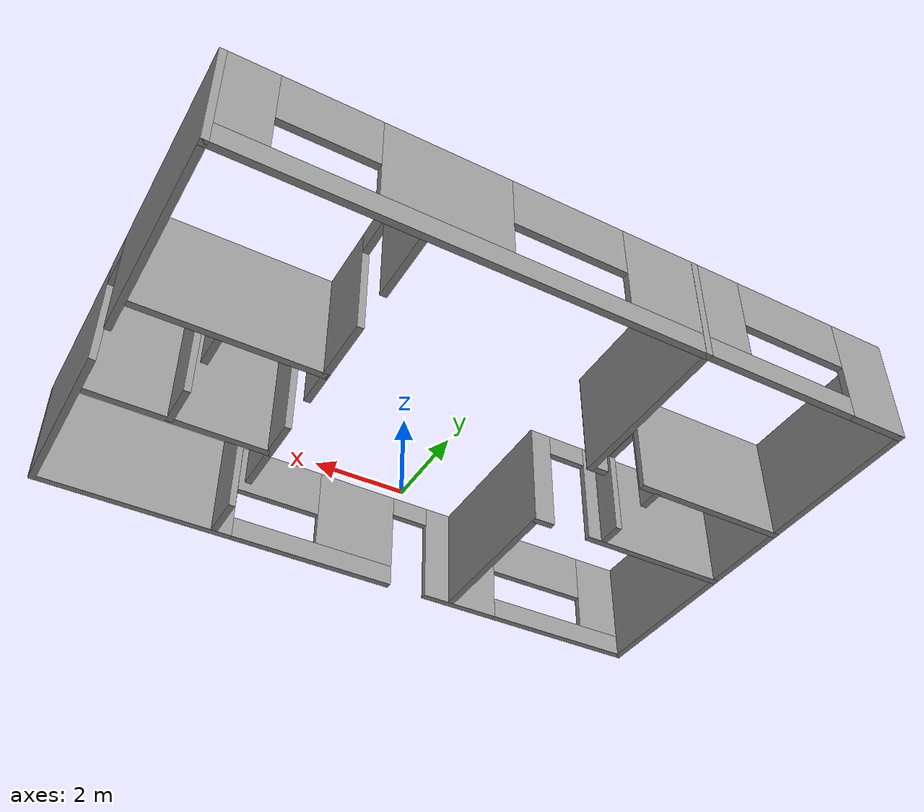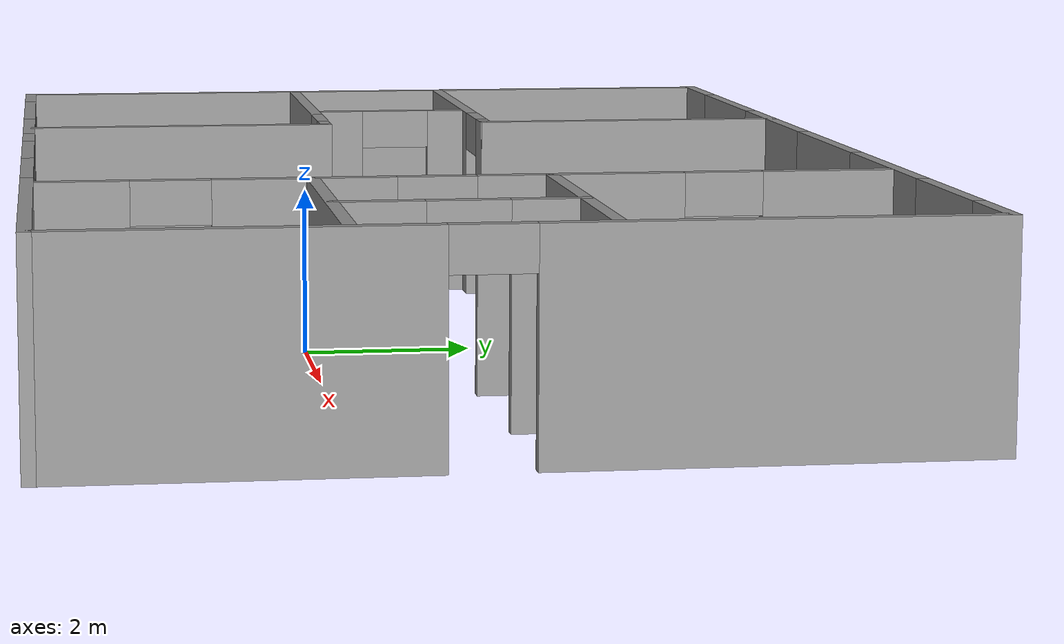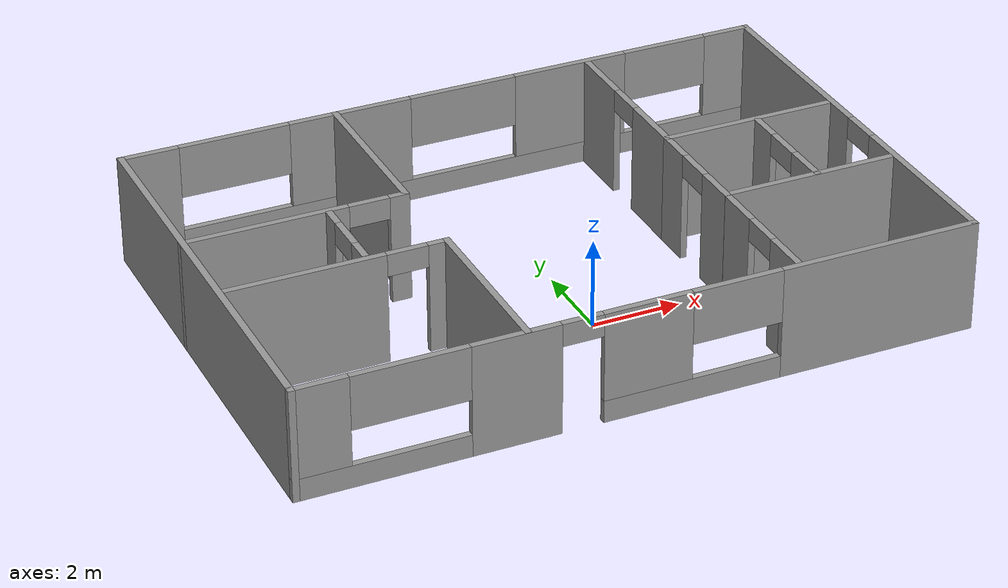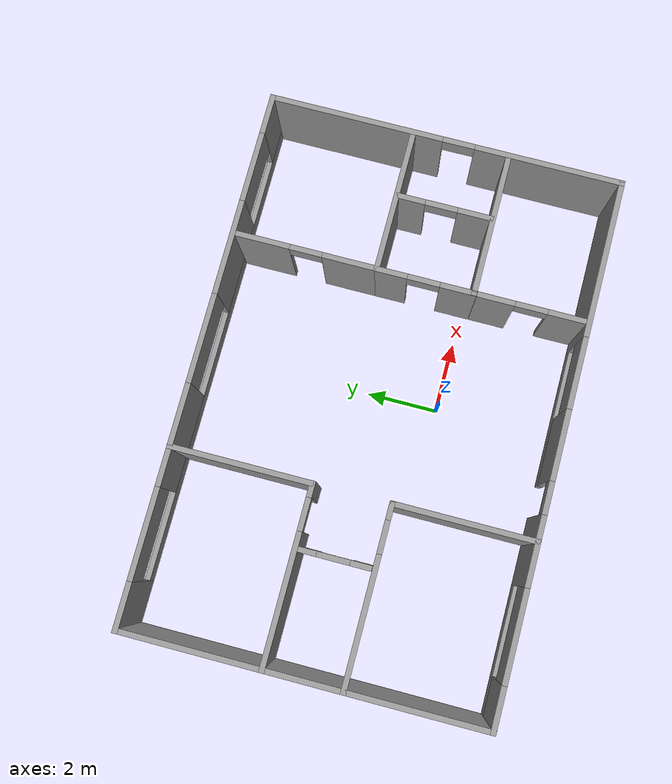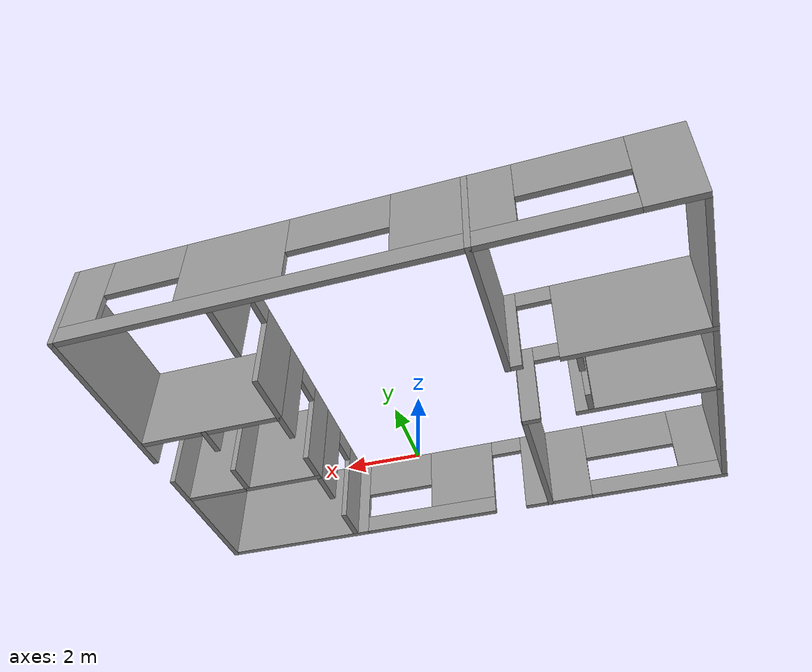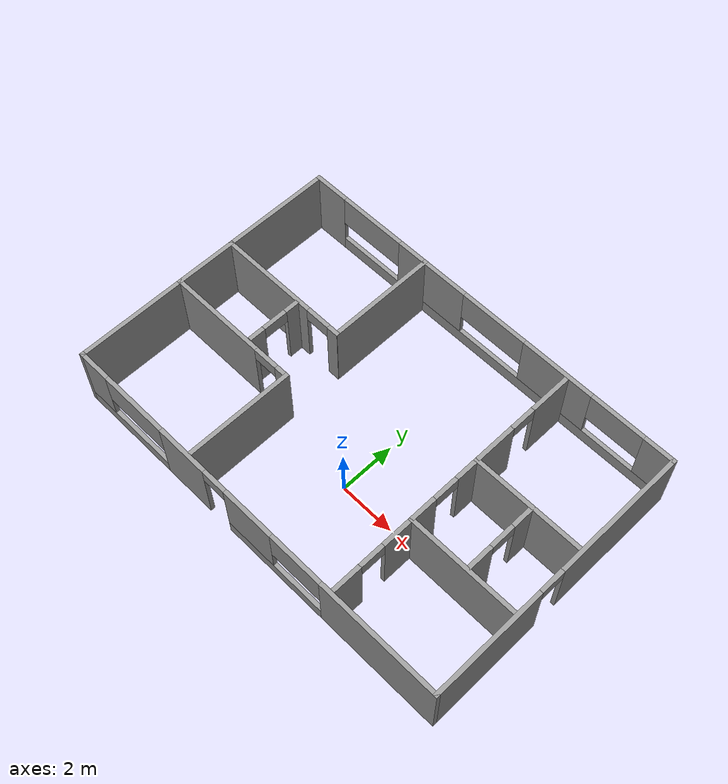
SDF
<?xml version='1.0'?>
<sdf version='1.7'>
  <model name='my_house'>
    <pose>-0.457596 1.60733 0 0 -0 0</pose>
    <link name='Wall_25'>
      <pose>0.000595 4.9235 0 0 -0 0</pose>
      <visual name='Wall_25_Visual_0'>
        <pose>-6.83087 0 1.25 0 -0 0</pose>
        <geometry>
          <box>
            <size>1.33827 0.15 2.5</size>
          </box>
        </geometry>
        <material>
          <script>
            <uri>file://media/materials/scripts/gazebo.material</uri>
            <name>Gazebo/Grey</name>
          </script>
          <ambient>1 1 1 1</ambient>
        </material>
        <meta>
          <layer>0</layer>
        </meta>
      </visual>
      <collision name='Wall_25_Collision_0'>
        <geometry>
          <box>
            <size>1.33827 0.15 2.5</size>
          </box>
        </geometry>
        <pose>-6.83087 0 1.25 0 -0 0</pose>
      </collision>
      <visual name='Wall_25_Visual_1'>
        <pose>0.669135 0 0.25 0 -0 0</pose>
        <geometry>
          <box>
            <size>13.6617 0.15 0.5</size>
          </box>
        </geometry>
        <material>
          <script>
            <uri>file://media/materials/scripts/gazebo.material</uri>
            <name>Gazebo/Grey</name>
          </script>
          <ambient>1 1 1 1</ambient>
        </material>
        <meta>
          <layer>0</layer>
        </meta>
      </visual>
      <collision name='Wall_25_Collision_1'>
        <geometry>
          <box>
            <size>13.6617 0.15 0.5</size>
          </box>
        </geometry>
        <pose>0.669135 0 0.25 0 -0 0</pose>
      </collision>
      <visual name='Wall_25_Visual_2'>
        <pose>-2.25173 0 1.5 0 -0 0</pose>
        <geometry>
          <box>
            <size>2.82 0.15 2</size>
          </box>
        </geometry>
        <material>
          <script>
            <uri>file://media/materials/scripts/gazebo.material</uri>
            <name>Gazebo/Grey</name>
          </script>
          <ambient>1 1 1 1</ambient>
        </material>
        <meta>
          <layer>0</layer>
        </meta>
      </visual>
      <collision name='Wall_25_Collision_2'>
        <geometry>
          <box>
            <size>2.82 0.15 2</size>
          </box>
        </geometry>
        <pose>-2.25173 0 1.5 0 -0 0</pose>
      </collision>
      <visual name='Wall_25_Visual_3'>
        <pose>3.00327 0 1.5 0 -0 0</pose>
        <geometry>
          <box>
            <size>2.69 0.15 2</size>
          </box>
        </geometry>
        <material>
          <script>
            <uri>file://media/materials/scripts/gazebo.material</uri>
            <name>Gazebo/Grey</name>
          </script>
          <ambient>1 1 1 1</ambient>
        </material>
        <meta>
          <layer>0</layer>
        </meta>
      </visual>
      <collision name='Wall_25_Collision_3'>
        <geometry>
          <box>
            <size>2.69 0.15 2</size>
          </box>
        </geometry>
        <pose>3.00327 0 1.5 0 -0 0</pose>
      </collision>
      <visual name='Wall_25_Visual_4'>
        <pose>6.92413 0 1.5 0 -0 0</pose>
        <geometry>
          <box>
            <size>1.15173 0.15 2</size>
          </box>
        </geometry>
        <material>
          <script>
            <uri>file://media/materials/scripts/gazebo.material</uri>
            <name>Gazebo/Grey</name>
          </script>
          <ambient>1 1 1 1</ambient>
        </material>
        <meta>
          <layer>0</layer>
        </meta>
      </visual>
      <collision name='Wall_25_Collision_4'>
        <geometry>
          <box>
            <size>1.15173 0.15 2</size>
          </box>
        </geometry>
        <pose>6.92413 0 1.5 0 -0 0</pose>
      </collision>
      <visual name='Wall_25_Visual_5'>
        <pose>6.92413 0 1.5 0 -0 0</pose>
        <geometry>
          <box>
            <size>1.15173 0.15 2</size>
          </box>
        </geometry>
        <material>
          <script>
            <uri>file://media/materials/scripts/gazebo.material</uri>
            <name>Gazebo/Grey</name>
          </script>
          <ambient>1 1 1 1</ambient>
        </material>
        <meta>
          <layer>0</layer>
        </meta>
      </visual>
      <collision name='Wall_25_Collision_5'>
        <geometry>
          <box>
            <size>1.15173 0.15 2</size>
          </box>
        </geometry>
        <pose>6.92413 0 1.5 0 -0 0</pose>
      </collision>
      <visual name='Wall_25_Visual_6'>
        <pose>-4.91173 0 1.9 0 -0 0</pose>
        <geometry>
          <box>
            <size>2.5 0.15 1.2</size>
          </box>
        </geometry>
        <material>
          <script>
            <uri>file://media/materials/scripts/gazebo.material</uri>
            <name>Gazebo/Grey</name>
          </script>
          <ambient>1 1 1 1</ambient>
        </material>
        <meta>
          <layer>0</layer>
        </meta>
      </visual>
      <collision name='Wall_25_Collision_6'>
        <geometry>
          <box>
            <size>2.5 0.15 1.2</size>
          </box>
        </geometry>
        <pose>-4.91173 0 1.9 0 -0 0</pose>
      </collision>
      <visual name='Wall_25_Visual_7'>
        <pose>0.40827 0 1.9 0 -0 0</pose>
        <geometry>
          <box>
            <size>2.5 0.15 1.2</size>
          </box>
        </geometry>
        <material>
          <script>
            <uri>file://media/materials/scripts/gazebo.material</uri>
            <name>Gazebo/Grey</name>
          </script>
          <ambient>1 1 1 1</ambient>
        </material>
        <meta>
          <layer>0</layer>
        </meta>
      </visual>
      <collision name='Wall_25_Collision_7'>
        <geometry>
          <box>
            <size>2.5 0.15 1.2</size>
          </box>
        </geometry>
        <pose>0.40827 0 1.9 0 -0 0</pose>
      </collision>
      <visual name='Wall_25_Visual_8'>
        <pose>5.34827 0 1.9 0 -0 0</pose>
        <geometry>
          <box>
            <size>2 0.15 1.2</size>
          </box>
        </geometry>
        <material>
          <script>
            <uri>file://media/materials/scripts/gazebo.material</uri>
            <name>Gazebo/Grey</name>
          </script>
          <ambient>1 1 1 1</ambient>
        </material>
        <meta>
          <layer>0</layer>
        </meta>
      </visual>
      <collision name='Wall_25_Collision_8'>
        <geometry>
          <box>
            <size>2 0.15 1.2</size>
          </box>
        </geometry>
        <pose>5.34827 0 1.9 0 -0 0</pose>
      </collision>
    </link>
    <link name='Wall_26'>
      <pose>7.4256 -0.001502 0 0 -0 -1.5708</pose>
      <visual name='Wall_26_Visual_0'>
        <pose>-2.54469 0 1.25 0 -0 0</pose>
        <geometry>
          <box>
            <size>4.91063 0.15 2.5</size>
          </box>
        </geometry>
        <material>
          <script>
            <uri>file://media/materials/scripts/gazebo.material</uri>
            <name>Gazebo/Grey</name>
          </script>
          <ambient>1 1 1 1</ambient>
        </material>
        <meta>
          <layer>0</layer>
        </meta>
      </visual>
      <collision name='Wall_26_Collision_0'>
        <geometry>
          <box>
            <size>4.91063 0.15 2.5</size>
          </box>
        </geometry>
        <pose>-2.54469 0 1.25 0 -0 0</pose>
      </collision>
      <visual name='Wall_26_Visual_1'>
        <pose>2.90531 0 1.25 0 -0 0</pose>
        <geometry>
          <box>
            <size>4.18937 0.15 2.5</size>
          </box>
        </geometry>
        <material>
          <script>
            <uri>file://media/materials/scripts/gazebo.material</uri>
            <name>Gazebo/Grey</name>
          </script>
          <ambient>1 1 1 1</ambient>
        </material>
        <meta>
          <layer>0</layer>
        </meta>
      </visual>
      <collision name='Wall_26_Collision_1'>
        <geometry>
          <box>
            <size>4.18937 0.15 2.5</size>
          </box>
        </geometry>
        <pose>2.90531 0 1.25 0 -0 0</pose>
      </collision>
      <visual name='Wall_26_Visual_2'>
        <pose>0.360626 0 2.25 0 -0 0</pose>
        <geometry>
          <box>
            <size>0.9 0.15 0.5</size>
          </box>
        </geometry>
        <material>
          <script>
            <uri>file://media/materials/scripts/gazebo.material</uri>
            <name>Gazebo/Grey</name>
          </script>
          <ambient>1 1 1 1</ambient>
        </material>
        <meta>
          <layer>0</layer>
        </meta>
      </visual>
      <collision name='Wall_26_Collision_2'>
        <geometry>
          <box>
            <size>0.9 0.15 0.5</size>
          </box>
        </geometry>
        <pose>0.360626 0 2.25 0 -0 0</pose>
      </collision>
    </link>
    <link name='Wall_27'>
      <pose>0.000595 -4.9265 0 0 -0 3.14159</pose>
      <visual name='Wall_27_Visual_0'>
        <pose>-5.25413 0 1.25 0 -0 0</pose>
        <geometry>
          <box>
            <size>4.49173 0.15 2.5</size>
          </box>
        </geometry>
        <material>
          <script>
            <uri>file://media/materials/scripts/gazebo.material</uri>
            <name>Gazebo/Grey</name>
          </script>
          <ambient>1 1 1 1</ambient>
        </material>
        <meta>
          <layer>0</layer>
        </meta>
      </visual>
      <collision name='Wall_27_Collision_0'>
        <geometry>
          <box>
            <size>4.49173 0.15 2.5</size>
          </box>
        </geometry>
        <pose>-5.25413 0 1.25 0 -0 0</pose>
      </collision>
      <visual name='Wall_27_Visual_1'>
        <pose>2.80138 0 1.25 0 -0 0</pose>
        <geometry>
          <box>
            <size>1.92069 0.15 2.5</size>
          </box>
        </geometry>
        <material>
          <script>
            <uri>file://media/materials/scripts/gazebo.material</uri>
            <name>Gazebo/Grey</name>
          </script>
          <ambient>1 1 1 1</ambient>
        </material>
        <meta>
          <layer>0</layer>
        </meta>
      </visual>
      <collision name='Wall_27_Collision_1'>
        <geometry>
          <box>
            <size>1.92069 0.15 2.5</size>
          </box>
        </geometry>
        <pose>2.80138 0 1.25 0 -0 0</pose>
      </collision>
      <visual name='Wall_27_Visual_2'>
        <pose>-1.03362 0 0.25 0 -0 0</pose>
        <geometry>
          <box>
            <size>3.94931 0.15 0.5</size>
          </box>
        </geometry>
        <material>
          <script>
            <uri>file://media/materials/scripts/gazebo.material</uri>
            <name>Gazebo/Grey</name>
          </script>
          <ambient>1 1 1 1</ambient>
        </material>
        <meta>
          <layer>0</layer>
        </meta>
      </visual>
      <collision name='Wall_27_Collision_2'>
        <geometry>
          <box>
            <size>3.94931 0.15 0.5</size>
          </box>
        </geometry>
        <pose>-1.03362 0 0.25 0 -0 0</pose>
      </collision>
      <visual name='Wall_27_Visual_3'>
        <pose>5.63087 0 0.25 0 -0 0</pose>
        <geometry>
          <box>
            <size>3.73827 0.15 0.5</size>
          </box>
        </geometry>
        <material>
          <script>
            <uri>file://media/materials/scripts/gazebo.material</uri>
            <name>Gazebo/Grey</name>
          </script>
          <ambient>1 1 1 1</ambient>
        </material>
        <meta>
          <layer>0</layer>
        </meta>
      </visual>
      <collision name='Wall_27_Collision_3'>
        <geometry>
          <box>
            <size>3.73827 0.15 0.5</size>
          </box>
        </geometry>
        <pose>5.63087 0 0.25 0 -0 0</pose>
      </collision>
      <visual name='Wall_27_Visual_4'>
        <pose>-0.033616 0 1.5 0 -0 0</pose>
        <geometry>
          <box>
            <size>1.94931 0.15 2</size>
          </box>
        </geometry>
        <material>
          <script>
            <uri>file://media/materials/scripts/gazebo.material</uri>
            <name>Gazebo/Grey</name>
          </script>
          <ambient>1 1 1 1</ambient>
        </material>
        <meta>
          <layer>0</layer>
        </meta>
      </visual>
      <collision name='Wall_27_Collision_4'>
        <geometry>
          <box>
            <size>1.94931 0.15 2</size>
          </box>
        </geometry>
        <pose>-0.033616 0 1.5 0 -0 0</pose>
      </collision>
      <visual name='Wall_27_Visual_5'>
        <pose>-0.033616 0 1.5 0 -0 0</pose>
        <geometry>
          <box>
            <size>1.94931 0.15 2</size>
          </box>
        </geometry>
        <material>
          <script>
            <uri>file://media/materials/scripts/gazebo.material</uri>
            <name>Gazebo/Grey</name>
          </script>
          <ambient>1 1 1 1</ambient>
        </material>
        <meta>
          <layer>0</layer>
        </meta>
      </visual>
      <collision name='Wall_27_Collision_5'>
        <geometry>
          <box>
            <size>1.94931 0.15 2</size>
          </box>
        </geometry>
        <pose>-0.033616 0 1.5 0 -0 0</pose>
      </collision>
      <visual name='Wall_27_Visual_6'>
        <pose>6.88087 0 1.5 0 -0 0</pose>
        <geometry>
          <box>
            <size>1.23827 0.15 2</size>
          </box>
        </geometry>
        <material>
          <script>
            <uri>file://media/materials/scripts/gazebo.material</uri>
            <name>Gazebo/Grey</name>
          </script>
          <ambient>1 1 1 1</ambient>
        </material>
        <meta>
          <layer>0</layer>
        </meta>
      </visual>
      <collision name='Wall_27_Collision_6'>
        <geometry>
          <box>
            <size>1.23827 0.15 2</size>
          </box>
        </geometry>
        <pose>6.88087 0 1.5 0 -0 0</pose>
      </collision>
      <visual name='Wall_27_Visual_7'>
        <pose>-2.00827 0 1.9 0 -0 0</pose>
        <geometry>
          <box>
            <size>2 0.15 1.2</size>
          </box>
        </geometry>
        <material>
          <script>
            <uri>file://media/materials/scripts/gazebo.material</uri>
            <name>Gazebo/Grey</name>
          </script>
          <ambient>1 1 1 1</ambient>
        </material>
        <meta>
          <layer>0</layer>
        </meta>
      </visual>
      <collision name='Wall_27_Collision_7'>
        <geometry>
          <box>
            <size>2 0.15 1.2</size>
          </box>
        </geometry>
        <pose>-2.00827 0 1.9 0 -0 0</pose>
      </collision>
      <visual name='Wall_27_Visual_8'>
        <pose>5.01173 0 1.9 0 -0 0</pose>
        <geometry>
          <box>
            <size>2.5 0.15 1.2</size>
          </box>
        </geometry>
        <material>
          <script>
            <uri>file://media/materials/scripts/gazebo.material</uri>
            <name>Gazebo/Grey</name>
          </script>
          <ambient>1 1 1 1</ambient>
        </material>
        <meta>
          <layer>0</layer>
        </meta>
      </visual>
      <collision name='Wall_27_Collision_8'>
        <geometry>
          <box>
            <size>2.5 0.15 1.2</size>
          </box>
        </geometry>
        <pose>5.01173 0 1.9 0 -0 0</pose>
      </collision>
      <visual name='Wall_27_Visual_9'>
        <pose>1.39104 0 2.25 0 -0 0</pose>
        <geometry>
          <box>
            <size>0.9 0.15 0.5</size>
          </box>
        </geometry>
        <material>
          <script>
            <uri>file://media/materials/scripts/gazebo.material</uri>
            <name>Gazebo/Grey</name>
          </script>
          <ambient>1 1 1 1</ambient>
        </material>
        <meta>
          <layer>0</layer>
        </meta>
      </visual>
      <collision name='Wall_27_Collision_9'>
        <geometry>
          <box>
            <size>0.9 0.15 0.5</size>
          </box>
        </geometry>
        <pose>1.39104 0 2.25 0 -0 0</pose>
      </collision>
      <visual name='Wall_27_Visual_10'>
        <pose>1.39104 0 2.25 0 -0 0</pose>
        <geometry>
          <box>
            <size>0.9 0.15 0.5</size>
          </box>
        </geometry>
        <material>
          <script>
            <uri>file://media/materials/scripts/gazebo.material</uri>
            <name>Gazebo/Grey</name>
          </script>
          <ambient>1 1 1 1</ambient>
        </material>
        <meta>
          <layer>0</layer>
        </meta>
      </visual>
      <collision name='Wall_27_Collision_10'>
        <geometry>
          <box>
            <size>0.9 0.15 0.5</size>
          </box>
        </geometry>
        <pose>1.39104 0 2.25 0 -0 0</pose>
      </collision>
    </link>
    <link name='Wall_28'>
      <collision name='Wall_28_Collision'>
        <geometry>
          <box>
            <size>10 0.15 2.5</size>
          </box>
        </geometry>
        <pose>0 0 1.25 0 -0 0</pose>
      </collision>
      <visual name='Wall_28_Visual'>
        <pose>0 0 1.25 0 -0 0</pose>
        <geometry>
          <box>
            <size>10 0.15 2.5</size>
          </box>
        </geometry>
        <material>
          <script>
            <uri>file://media/materials/scripts/gazebo.material</uri>
            <name>Gazebo/Grey</name>
          </script>
          <ambient>1 1 1 1</ambient>
        </material>
        <meta>
          <layer>0</layer>
        </meta>
      </visual>
      <pose>-7.42441 -0.001502 0 0 -0 1.5708</pose>
    </link>
    <link name='Wall_35'>
      <collision name='Wall_35_Collision'>
        <geometry>
          <box>
            <size>4 0.15 2.5</size>
          </box>
        </geometry>
        <pose>0 0 1.25 0 -0 0</pose>
      </collision>
      <visual name='Wall_35_Visual'>
        <pose>0 0 1.25 0 -0 0</pose>
        <geometry>
          <box>
            <size>4 0.15 2.5</size>
          </box>
        </geometry>
        <material>
          <script>
            <uri>file://media/materials/scripts/gazebo.material</uri>
            <name>Gazebo/Grey</name>
          </script>
          <ambient>1 1 1 1</ambient>
        </material>
        <meta>
          <layer>0</layer>
        </meta>
      </visual>
      <pose>5.34946 0.91485 0 0 -0 0</pose>
    </link>
    <link name='Wall_39'>
      <collision name='Wall_39_Collision'>
        <geometry>
          <box>
            <size>4 0.15 2.5</size>
          </box>
        </geometry>
        <pose>0 0 1.25 0 -0 0</pose>
      </collision>
      <visual name='Wall_39_Visual'>
        <pose>0 0 1.25 0 -0 0</pose>
        <geometry>
          <box>
            <size>4 0.15 2.5</size>
          </box>
        </geometry>
        <material>
          <script>
            <uri>file://media/materials/scripts/gazebo.material</uri>
            <name>Gazebo/Grey</name>
          </script>
          <ambient>1 1 1 1</ambient>
        </material>
        <meta>
          <layer>0</layer>
        </meta>
      </visual>
      <pose>5.35317 -1.77304 0 0 -0 3.14159</pose>
    </link>
    <link name='Wall_43'>
      <pose>-4.99908 -1.05983 0 0 -0 0</pose>
      <visual name='Wall_43_Visual_0'>
        <pose>-0.694182 0 1.25 0 -0 0</pose>
        <geometry>
          <box>
            <size>3.61164 0.15 2.5</size>
          </box>
        </geometry>
        <material>
          <script>
            <uri>file://media/materials/scripts/gazebo.material</uri>
            <name>Gazebo/Grey</name>
          </script>
          <ambient>1 1 1 1</ambient>
        </material>
        <meta>
          <layer>0</layer>
        </meta>
      </visual>
      <collision name='Wall_43_Collision_0'>
        <geometry>
          <box>
            <size>3.61164 0.15 2.5</size>
          </box>
        </geometry>
        <pose>-0.694182 0 1.25 0 -0 0</pose>
      </collision>
      <visual name='Wall_43_Visual_1'>
        <pose>2.25582 0 1.25 0 -0 0</pose>
        <geometry>
          <box>
            <size>0.488365 0.15 2.5</size>
          </box>
        </geometry>
        <material>
          <script>
            <uri>file://media/materials/scripts/gazebo.material</uri>
            <name>Gazebo/Grey</name>
          </script>
          <ambient>1 1 1 1</ambient>
        </material>
        <meta>
          <layer>0</layer>
        </meta>
      </visual>
      <collision name='Wall_43_Collision_1'>
        <geometry>
          <box>
            <size>0.488365 0.15 2.5</size>
          </box>
        </geometry>
        <pose>2.25582 0 1.25 0 -0 0</pose>
      </collision>
      <visual name='Wall_43_Visual_2'>
        <pose>1.56164 0 2.25 0 -0 0</pose>
        <geometry>
          <box>
            <size>0.9 0.15 0.5</size>
          </box>
        </geometry>
        <material>
          <script>
            <uri>file://media/materials/scripts/gazebo.material</uri>
            <name>Gazebo/Grey</name>
          </script>
          <ambient>1 1 1 1</ambient>
        </material>
        <meta>
          <layer>0</layer>
        </meta>
      </visual>
      <collision name='Wall_43_Collision_2'>
        <geometry>
          <box>
            <size>0.9 0.15 0.5</size>
          </box>
        </geometry>
        <pose>1.56164 0 2.25 0 -0 0</pose>
      </collision>
    </link>
    <link name='Wall_45'>
      <collision name='Wall_45_Collision'>
        <geometry>
          <box>
            <size>4 0.15 2.5</size>
          </box>
        </geometry>
        <pose>0 0 1.25 0 -0 0</pose>
      </collision>
      <visual name='Wall_45_Visual'>
        <pose>0 0 1.25 0 -0 0</pose>
        <geometry>
          <box>
            <size>4 0.15 2.5</size>
          </box>
        </geometry>
        <material>
          <script>
            <uri>file://media/materials/scripts/gazebo.material</uri>
            <name>Gazebo/Grey</name>
          </script>
          <ambient>1 1 1 1</ambient>
        </material>
        <meta>
          <layer>0</layer>
        </meta>
      </visual>
      <pose>-2.55492 -2.98592 0 0 -0 1.5708</pose>
    </link>
    <link name='Wall_47'>
      <collision name='Wall_47_Collision'>
        <geometry>
          <box>
            <size>4 0.15 2.5</size>
          </box>
        </geometry>
        <pose>0 0 1.25 0 -0 0</pose>
      </collision>
      <visual name='Wall_47_Visual'>
        <pose>0 0 1.25 0 -0 0</pose>
        <geometry>
          <box>
            <size>4 0.15 2.5</size>
          </box>
        </geometry>
        <material>
          <script>
            <uri>file://media/materials/scripts/gazebo.material</uri>
            <name>Gazebo/Grey</name>
          </script>
          <ambient>1 1 1 1</ambient>
        </material>
        <meta>
          <layer>0</layer>
        </meta>
      </visual>
      <pose>-2.57342 3.0015 0 0 -0 -1.5708</pose>
    </link>
    <link name='Wall_49'>
      <pose>-5.0006 1.06563 0 0 -0 0</pose>
      <visual name='Wall_49_Visual_0'>
        <pose>-0.670424 0 1.25 0 -0 0</pose>
        <geometry>
          <box>
            <size>3.65915 0.15 2.5</size>
          </box>
        </geometry>
        <material>
          <script>
            <uri>file://media/materials/scripts/gazebo.material</uri>
            <name>Gazebo/Grey</name>
          </script>
          <ambient>1 1 1 1</ambient>
        </material>
        <meta>
          <layer>0</layer>
        </meta>
      </visual>
      <collision name='Wall_49_Collision_0'>
        <geometry>
          <box>
            <size>3.65915 0.15 2.5</size>
          </box>
        </geometry>
        <pose>-0.670424 0 1.25 0 -0 0</pose>
      </collision>
      <visual name='Wall_49_Visual_1'>
        <pose>2.27958 0 1.25 0 -0 0</pose>
        <geometry>
          <box>
            <size>0.440848 0.15 2.5</size>
          </box>
        </geometry>
        <material>
          <script>
            <uri>file://media/materials/scripts/gazebo.material</uri>
            <name>Gazebo/Grey</name>
          </script>
          <ambient>1 1 1 1</ambient>
        </material>
        <meta>
          <layer>0</layer>
        </meta>
      </visual>
      <collision name='Wall_49_Collision_1'>
        <geometry>
          <box>
            <size>0.440848 0.15 2.5</size>
          </box>
        </geometry>
        <pose>2.27958 0 1.25 0 -0 0</pose>
      </collision>
      <visual name='Wall_49_Visual_2'>
        <pose>1.60915 0 2.25 0 -0 0</pose>
        <geometry>
          <box>
            <size>0.9 0.15 0.5</size>
          </box>
        </geometry>
        <material>
          <script>
            <uri>file://media/materials/scripts/gazebo.material</uri>
            <name>Gazebo/Grey</name>
          </script>
          <ambient>1 1 1 1</ambient>
        </material>
        <meta>
          <layer>0</layer>
        </meta>
      </visual>
      <collision name='Wall_49_Collision_2'>
        <geometry>
          <box>
            <size>0.9 0.15 0.5</size>
          </box>
        </geometry>
        <pose>1.60915 0 2.25 0 -0 0</pose>
      </collision>
    </link>
    <link name='Wall_54'>
      <pose>3.41846 2.84798 0 0 -0 -1.5708</pose>
      <visual name='Wall_54_Visual_0'>
        <pose>-1.24145 0 1.25 0 -0 0</pose>
        <geometry>
          <box>
            <size>1.51711 0.15 2.5</size>
          </box>
        </geometry>
        <material>
          <script>
            <uri>file://media/materials/scripts/gazebo.material</uri>
            <name>Gazebo/Grey</name>
          </script>
          <ambient>1 1 1 1</ambient>
        </material>
        <meta>
          <layer>0</layer>
        </meta>
      </visual>
      <collision name='Wall_54_Collision_0'>
        <geometry>
          <box>
            <size>1.51711 0.15 2.5</size>
          </box>
        </geometry>
        <pose>-1.24145 0 1.25 0 -0 0</pose>
      </collision>
      <visual name='Wall_54_Visual_1'>
        <pose>1.20855 0 1.25 0 -0 0</pose>
        <geometry>
          <box>
            <size>1.58289 0.15 2.5</size>
          </box>
        </geometry>
        <material>
          <script>
            <uri>file://media/materials/scripts/gazebo.material</uri>
            <name>Gazebo/Grey</name>
          </script>
          <ambient>1 1 1 1</ambient>
        </material>
        <meta>
          <layer>0</layer>
        </meta>
      </visual>
      <collision name='Wall_54_Collision_1'>
        <geometry>
          <box>
            <size>1.58289 0.15 2.5</size>
          </box>
        </geometry>
        <pose>1.20855 0 1.25 0 -0 0</pose>
      </collision>
      <visual name='Wall_54_Visual_2'>
        <pose>-0.032891 0 2.25 0 -0 0</pose>
        <geometry>
          <box>
            <size>0.9 0.15 0.5</size>
          </box>
        </geometry>
        <material>
          <script>
            <uri>file://media/materials/scripts/gazebo.material</uri>
            <name>Gazebo/Grey</name>
          </script>
          <ambient>1 1 1 1</ambient>
        </material>
        <meta>
          <layer>0</layer>
        </meta>
      </visual>
      <collision name='Wall_54_Collision_2'>
        <geometry>
          <box>
            <size>0.9 0.15 0.5</size>
          </box>
        </geometry>
        <pose>-0.032891 0 2.25 0 -0 0</pose>
      </collision>
    </link>
    <link name='Wall_62'>
      <pose>-4.28844 0.023872 0 0 -0 -1.5708</pose>
      <visual name='Wall_62_Visual_0'>
        <pose>-0.739 0 1.25 0 -0 0</pose>
        <geometry>
          <box>
            <size>0.522 0.15 2.5</size>
          </box>
        </geometry>
        <material>
          <script>
            <uri>file://media/materials/scripts/gazebo.material</uri>
            <name>Gazebo/Grey</name>
          </script>
          <ambient>1 1 1 1</ambient>
        </material>
        <meta>
          <layer>0</layer>
        </meta>
      </visual>
      <collision name='Wall_62_Collision_0'>
        <geometry>
          <box>
            <size>0.522 0.15 2.5</size>
          </box>
        </geometry>
        <pose>-0.739 0 1.25 0 -0 0</pose>
      </collision>
      <visual name='Wall_62_Visual_1'>
        <pose>0.711 0 1.25 0 -0 0</pose>
        <geometry>
          <box>
            <size>0.578 0.15 2.5</size>
          </box>
        </geometry>
        <material>
          <script>
            <uri>file://media/materials/scripts/gazebo.material</uri>
            <name>Gazebo/Grey</name>
          </script>
          <ambient>1 1 1 1</ambient>
        </material>
        <meta>
          <layer>0</layer>
        </meta>
      </visual>
      <collision name='Wall_62_Collision_1'>
        <geometry>
          <box>
            <size>0.578 0.15 2.5</size>
          </box>
        </geometry>
        <pose>0.711 0 1.25 0 -0 0</pose>
      </collision>
      <visual name='Wall_62_Visual_2'>
        <pose>-0.028 0 2.25 0 -0 0</pose>
        <geometry>
          <box>
            <size>0.9 0.15 0.5</size>
          </box>
        </geometry>
        <material>
          <script>
            <uri>file://media/materials/scripts/gazebo.material</uri>
            <name>Gazebo/Grey</name>
          </script>
          <ambient>1 1 1 1</ambient>
        </material>
        <meta>
          <layer>0</layer>
        </meta>
      </visual>
      <collision name='Wall_62_Collision_2'>
        <geometry>
          <box>
            <size>0.9 0.15 0.5</size>
          </box>
        </geometry>
        <pose>-0.028 0 2.25 0 -0 0</pose>
      </collision>
    </link>
    <link name='Wall_67'>
      <pose>3.41656 -3.35313 0 0 -0 1.5708</pose>
      <visual name='Wall_67_Visual_0'>
        <pose>-0.9745 0 1.25 0 -0 0</pose>
        <geometry>
          <box>
            <size>1.051 0.15 2.5</size>
          </box>
        </geometry>
        <material>
          <script>
            <uri>file://media/materials/scripts/gazebo.material</uri>
            <name>Gazebo/Grey</name>
          </script>
          <ambient>1 1 1 1</ambient>
        </material>
        <meta>
          <layer>0</layer>
        </meta>
      </visual>
      <collision name='Wall_67_Collision_0'>
        <geometry>
          <box>
            <size>1.051 0.15 2.5</size>
          </box>
        </geometry>
        <pose>-0.9745 0 1.25 0 -0 0</pose>
      </collision>
      <visual name='Wall_67_Visual_1'>
        <pose>0.9755 0 1.25 0 -0 0</pose>
        <geometry>
          <box>
            <size>1.049 0.15 2.5</size>
          </box>
        </geometry>
        <material>
          <script>
            <uri>file://media/materials/scripts/gazebo.material</uri>
            <name>Gazebo/Grey</name>
          </script>
          <ambient>1 1 1 1</ambient>
        </material>
        <meta>
          <layer>0</layer>
        </meta>
      </visual>
      <collision name='Wall_67_Collision_1'>
        <geometry>
          <box>
            <size>1.049 0.15 2.5</size>
          </box>
        </geometry>
        <pose>0.9755 0 1.25 0 -0 0</pose>
      </collision>
      <visual name='Wall_67_Visual_2'>
        <pose>0.001 0 2.25 0 -0 0</pose>
        <geometry>
          <box>
            <size>0.9 0.15 0.5</size>
          </box>
        </geometry>
        <material>
          <script>
            <uri>file://media/materials/scripts/gazebo.material</uri>
            <name>Gazebo/Grey</name>
          </script>
          <ambient>1 1 1 1</ambient>
        </material>
        <meta>
          <layer>0</layer>
        </meta>
      </visual>
      <collision name='Wall_67_Collision_2'>
        <geometry>
          <box>
            <size>0.9 0.15 0.5</size>
          </box>
        </geometry>
        <pose>0.001 0 2.25 0 -0 0</pose>
      </collision>
    </link>
    <link name='Wall_69'>
      <pose>3.41656 -0.445128 0 0 -0 -1.5708</pose>
      <visual name='Wall_69_Visual_0'>
        <pose>-0.955 0 1.25 0 -0 0</pose>
        <geometry>
          <box>
            <size>0.89 0.15 2.5</size>
          </box>
        </geometry>
        <material>
          <script>
            <uri>file://media/materials/scripts/gazebo.material</uri>
            <name>Gazebo/Grey</name>
          </script>
          <ambient>1 1 1 1</ambient>
        </material>
        <meta>
          <layer>0</layer>
        </meta>
      </visual>
      <collision name='Wall_69_Collision_0'>
        <geometry>
          <box>
            <size>0.89 0.15 2.5</size>
          </box>
        </geometry>
        <pose>-0.955 0 1.25 0 -0 0</pose>
      </collision>
      <visual name='Wall_69_Visual_1'>
        <pose>0.895 0 1.25 0 -0 0</pose>
        <geometry>
          <box>
            <size>1.01 0.15 2.5</size>
          </box>
        </geometry>
        <material>
          <script>
            <uri>file://media/materials/scripts/gazebo.material</uri>
            <name>Gazebo/Grey</name>
          </script>
          <ambient>1 1 1 1</ambient>
        </material>
        <meta>
          <layer>0</layer>
        </meta>
      </visual>
      <collision name='Wall_69_Collision_1'>
        <geometry>
          <box>
            <size>1.01 0.15 2.5</size>
          </box>
        </geometry>
        <pose>0.895 0 1.25 0 -0 0</pose>
      </collision>
      <visual name='Wall_69_Visual_2'>
        <pose>-0.06 0 2.25 0 -0 0</pose>
        <geometry>
          <box>
            <size>0.9 0.15 0.5</size>
          </box>
        </geometry>
        <material>
          <script>
            <uri>file://media/materials/scripts/gazebo.material</uri>
            <name>Gazebo/Grey</name>
          </script>
          <ambient>1 1 1 1</ambient>
        </material>
        <meta>
          <layer>0</layer>
        </meta>
      </visual>
      <collision name='Wall_69_Collision_2'>
        <geometry>
          <box>
            <size>0.9 0.15 0.5</size>
          </box>
        </geometry>
        <pose>-0.06 0 2.25 0 -0 0</pose>
      </collision>
    </link>
    <link name='Wall_73'>
      <pose>5.55556 -0.422128 0 0 -0 -1.5708</pose>
      <visual name='Wall_73_Visual_0'>
        <pose>-0.9665 0 1.25 0 -0 0</pose>
        <geometry>
          <box>
            <size>0.867 0.15 2.5</size>
          </box>
        </geometry>
        <material>
          <script>
            <uri>file://media/materials/scripts/gazebo.material</uri>
            <name>Gazebo/Grey</name>
          </script>
          <ambient>1 1 1 1</ambient>
        </material>
        <meta>
          <layer>0</layer>
        </meta>
      </visual>
      <collision name='Wall_73_Collision_0'>
        <geometry>
          <box>
            <size>0.867 0.15 2.5</size>
          </box>
        </geometry>
        <pose>-0.9665 0 1.25 0 -0 0</pose>
      </collision>
      <visual name='Wall_73_Visual_1'>
        <pose>0.8835 0 1.25 0 -0 0</pose>
        <geometry>
          <box>
            <size>1.033 0.15 2.5</size>
          </box>
        </geometry>
        <material>
          <script>
            <uri>file://media/materials/scripts/gazebo.material</uri>
            <name>Gazebo/Grey</name>
          </script>
          <ambient>1 1 1 1</ambient>
        </material>
        <meta>
          <layer>0</layer>
        </meta>
      </visual>
      <collision name='Wall_73_Collision_1'>
        <geometry>
          <box>
            <size>1.033 0.15 2.5</size>
          </box>
        </geometry>
        <pose>0.8835 0 1.25 0 -0 0</pose>
      </collision>
      <visual name='Wall_73_Visual_2'>
        <pose>-0.083 0 2.25 0 -0 0</pose>
        <geometry>
          <box>
            <size>0.9 0.15 0.5</size>
          </box>
        </geometry>
        <material>
          <script>
            <uri>file://media/materials/scripts/gazebo.material</uri>
            <name>Gazebo/Grey</name>
          </script>
          <ambient>1 1 1 1</ambient>
        </material>
        <meta>
          <layer>0</layer>
        </meta>
      </visual>
      <collision name='Wall_73_Collision_2'>
        <geometry>
          <box>
            <size>0.9 0.15 0.5</size>
          </box>
        </geometry>
        <pose>-0.083 0 2.25 0 -0 0</pose>
      </collision>
    </link>
    <static>1</static>
  </model>
</sdf>
